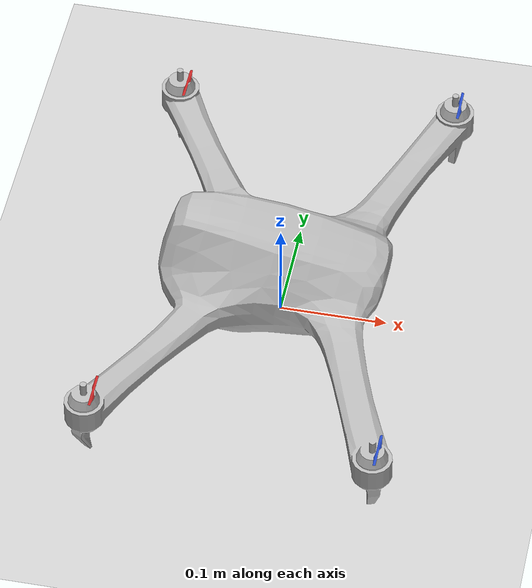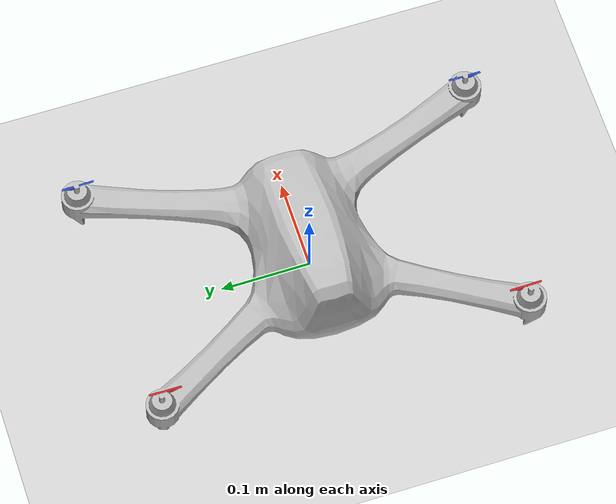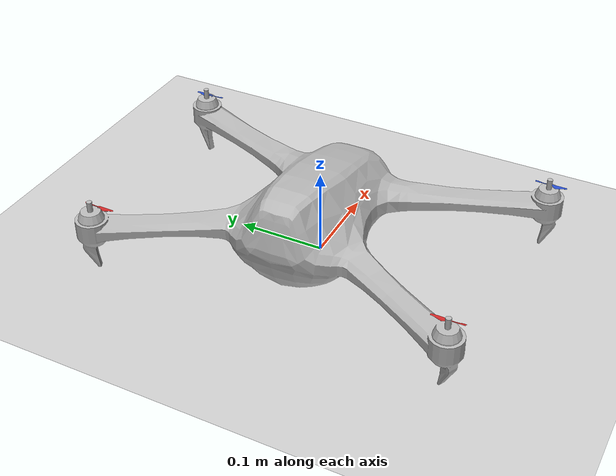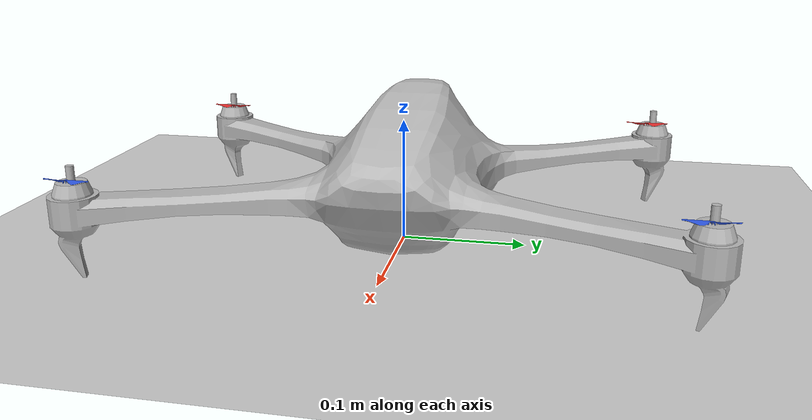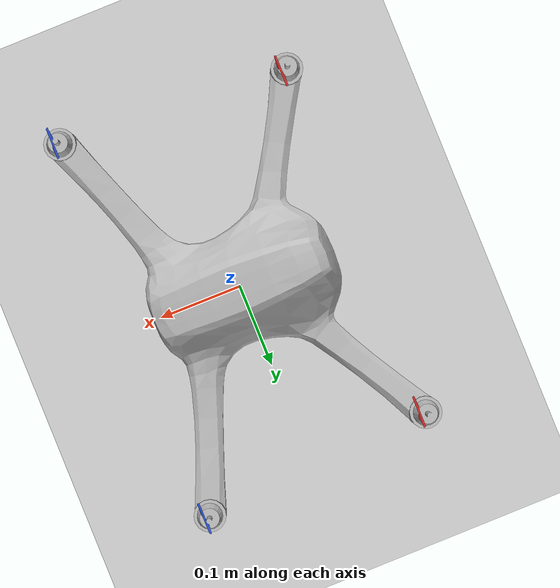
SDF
<?xml version="1.0" ?>
<sdf version="1.6">
  <world name="quadcopter">
    <physics name="4ms" type="ode">
      <max_step_size>0.004</max_step_size>
      <real_time_factor>1.0</real_time_factor>
    </physics>
    <plugin
      filename="libignition-gazebo-physics-system.so"
      name="ignition::gazebo::systems::Physics">
    </plugin>
    <plugin
      filename="libignition-gazebo-scene-broadcaster-system.so"
      name="ignition::gazebo::systems::SceneBroadcaster">
    </plugin>
    <plugin
      filename="libignition-gazebo-user-commands-system.so"
      name="ignition::gazebo::systems::UserCommands">
    </plugin>
    <plugin
      filename="libignition-gazebo-sensors-system.so"
      name="ignition::gazebo::systems::Sensors">
      <render_engine>ogre2</render_engine>
    </plugin>
    <plugin filename="libignition-gazebo-imu-system.so"
            name="ignition::gazebo::systems::Imu">
    </plugin>
    <gui fullscreen="0">
      <!-- 3D scene -->
      <plugin filename="GzScene3D" name="3D View">
        <ignition-gui>
          <title>3D View</title>
          <property type="bool" key="showTitleBar">false</property>
          <property type="string" key="state">docked</property>
        </ignition-gui>

        <engine>ogre2</engine>
        <scene>scene</scene>
        <ambient_light>0.4 0.4 0.4</ambient_light>
        <background_color>0.8 0.8 0.8</background_color>
        <camera_pose>-6 0 6 0 0.5 0</camera_pose>
      </plugin>

      <!-- World control -->
      <plugin filename="WorldControl" name="World control">
        <ignition-gui>
          <title>World control</title>
          <property type="bool" key="showTitleBar">false</property>
          <property type="bool" key="resizable">false</property>
          <property type="double" key="height">72</property>
          <property type="double" key="width">121</property>
          <property type="double" key="z">1</property>

          <property type="string" key="state">floating</property>
          <anchors target="3D View">
            <line own="left" target="left"/>
            <line own="bottom" target="bottom"/>
          </anchors>
        </ignition-gui>

        <play_pause>true</play_pause>
        <step>true</step>
        <start_paused>true</start_paused>
        <service>/world/quadcopter/control</service>
        <stats_topic>/world/quadcopter/stats</stats_topic>

      </plugin>

      <!-- World statistics -->
      <plugin filename="WorldStats" name="World stats">
        <ignition-gui>
          <title>World stats</title>
          <property type="bool" key="showTitleBar">false</property>
          <property type="bool" key="resizable">false</property>
          <property type="double" key="height">110</property>
          <property type="double" key="width">290</property>
          <property type="double" key="z">1</property>

          <property type="string" key="state">floating</property>
          <anchors target="3D View">
            <line own="right" target="right"/>
            <line own="bottom" target="bottom"/>
          </anchors>
        </ignition-gui>

        <sim_time>true</sim_time>
        <real_time>true</real_time>
        <real_time_factor>true</real_time_factor>
        <iterations>true</iterations>
        <topic>/world/quadcopter/stats</topic>

      </plugin>

    </gui>

    <light type="directional" name="sun">
      <cast_shadows>true</cast_shadows>
      <pose>0 0 10 0 0 0</pose>
      <diffuse>0.8 0.8 0.8 1</diffuse>
      <specular>0.2 0.2 0.2 1</specular>
      <attenuation>
        <range>1000</range>
        <constant>0.9</constant>
        <linear>0.01</linear>
        <quadratic>0.001</quadratic>
      </attenuation>
      <direction>-0.5 0.1 -0.9</direction>
    </light>

    <model name="ground_plane">
      <static>true</static>
      <link name="link">
        <collision name="collision">
          <geometry>
            <plane>
              <normal>0 0 1</normal>
            </plane>
          </geometry>
        </collision>
        <visual name="visual">
          <geometry>
            <plane>
              <normal>0 0 1</normal>
              <size>100 100</size>
            </plane>
          </geometry>
          <material>
            <ambient>0.8 0.8 0.8 1</ambient>
            <diffuse>0.8 0.8 0.8 1</diffuse>
            <specular>0.8 0.8 0.8 1</specular>
          </material>
        </visual>
      </link>
    </model>
  <include>
    <uri>model://x3</uri>
    <plugin
        filename="ignition-gazebo-multicopter-motor-model-system"
        name="ignition::gazebo::systems::MulticopterMotorModel">
        <robotNamespace>X3</robotNamespace>
        <jointName>X3/rotor_0_joint</jointName>
        <linkName>X3/rotor_0</linkName>
        <turningDirection>ccw</turningDirection>
        <timeConstantUp>0.0125</timeConstantUp>
        <timeConstantDown>0.025</timeConstantDown>
        <maxRotVelocity>800.0</maxRotVelocity>
        <motorConstant>8.54858e-06</motorConstant>
        <momentConstant>0.016</momentConstant>
        <commandSubTopic>gazebo/command/motor_speed</commandSubTopic>
        <motorNumber>0</motorNumber>
        <rotorDragCoefficient>8.06428e-05</rotorDragCoefficient>
        <rollingMomentCoefficient>1e-06</rollingMomentCoefficient>
        <motorSpeedPubTopic>motor_speed/0</motorSpeedPubTopic>
        <rotorVelocitySlowdownSim>10</rotorVelocitySlowdownSim>
        <motorType>velocity</motorType>
      </plugin>
      <plugin
        filename="ignition-gazebo-multicopter-motor-model-system"
        name="ignition::gazebo::systems::MulticopterMotorModel">
        <robotNamespace>X3</robotNamespace>
        <jointName>X3/rotor_1_joint</jointName>
        <linkName>X3/rotor_1</linkName>
        <turningDirection>ccw</turningDirection>
        <timeConstantUp>0.0125</timeConstantUp>
        <timeConstantDown>0.025</timeConstantDown>
        <maxRotVelocity>800.0</maxRotVelocity>
        <motorConstant>8.54858e-06</motorConstant>
        <momentConstant>0.016</momentConstant>
        <commandSubTopic>gazebo/command/motor_speed</commandSubTopic>
        <motorNumber>1</motorNumber>
        <rotorDragCoefficient>8.06428e-05</rotorDragCoefficient>
        <rollingMomentCoefficient>1e-06</rollingMomentCoefficient>
        <motorSpeedPubTopic>motor_speed/1</motorSpeedPubTopic>
        <rotorVelocitySlowdownSim>10</rotorVelocitySlowdownSim>
        <motorType>velocity</motorType>
      </plugin>
      <plugin
        filename="ignition-gazebo-multicopter-motor-model-system"
        name="ignition::gazebo::systems::MulticopterMotorModel">
        <robotNamespace>X3</robotNamespace>
        <jointName>X3/rotor_2_joint</jointName>
        <linkName>X3/rotor_2</linkName>
        <turningDirection>cw</turningDirection>
        <timeConstantUp>0.0125</timeConstantUp>
        <timeConstantDown>0.025</timeConstantDown>
        <maxRotVelocity>800.0</maxRotVelocity>
        <motorConstant>8.54858e-06</motorConstant>
        <momentConstant>0.016</momentConstant>
        <commandSubTopic>gazebo/command/motor_speed</commandSubTopic>
        <motorNumber>2</motorNumber>
        <rotorDragCoefficient>8.06428e-05</rotorDragCoefficient>
        <rollingMomentCoefficient>1e-06</rollingMomentCoefficient>
        <motorSpeedPubTopic>motor_speed/2</motorSpeedPubTopic>
        <rotorVelocitySlowdownSim>10</rotorVelocitySlowdownSim>
        <motorType>velocity</motorType>
      </plugin>
      <plugin
        filename="ignition-gazebo-multicopter-motor-model-system"
        name="ignition::gazebo::systems::MulticopterMotorModel">
        <robotNamespace>X3</robotNamespace>
        <jointName>X3/rotor_3_joint</jointName>
        <linkName>X3/rotor_3</linkName>
        <turningDirection>cw</turningDirection>
        <timeConstantUp>0.0125</timeConstantUp>
        <timeConstantDown>0.025</timeConstantDown>
        <maxRotVelocity>800.0</maxRotVelocity>
        <motorConstant>8.54858e-06</motorConstant>
        <momentConstant>0.016</momentConstant>
        <commandSubTopic>gazebo/command/motor_speed</commandSubTopic>
        <motorNumber>3</motorNumber>
        <rotorDragCoefficient>8.06428e-05</rotorDragCoefficient>
        <rollingMomentCoefficient>1e-06</rollingMomentCoefficient>
        <motorSpeedPubTopic>motor_speed/3</motorSpeedPubTopic>
        <rotorVelocitySlowdownSim>10</rotorVelocitySlowdownSim>
        <motorType>velocity</motorType>
      </plugin>
      <plugin
          filename="libmavlink_sitl_ign_gazebo.so"
          name="mavlink_interface::GazeboMavlinkInterface">
                <robotNamespace/>
        <imuSubTopic>/imu</imuSubTopic>
        <magSubTopic>/mag</magSubTopic>
        <baroSubTopic>/baro</baroSubTopic>
        <mavlink_addr>INADDR_ANY</mavlink_addr>
        <mavlink_udp_port>14560</mavlink_udp_port>
        <mavlink_tcp_port>4560</mavlink_tcp_port>
        <serialEnabled>0</serialEnabled>
        <serialDevice>/dev/ttyACM0</serialDevice>
        <baudRate>921600</baudRate>
        <qgc_addr>INADDR_ANY</qgc_addr>
        <qgc_udp_port>14550</qgc_udp_port>
        <sdk_addr>INADDR_ANY</sdk_addr>
        <sdk_udp_port>14540</sdk_udp_port>
        <hil_mode>0</hil_mode>
        <hil_state_level>0</hil_state_level>
        <vehicle_is_tailsitter>0</vehicle_is_tailsitter>
        <send_vision_estimation>0</send_vision_estimation>
        <send_odometry>1</send_odometry>
        <enable_lockstep>1</enable_lockstep>
        <use_tcp>1</use_tcp>
        <motorSpeedCommandPubTopic>/gazebo/command/motor_speed</motorSpeedCommandPubTopic>
        <control_channels>
          <channel name='rotor1'>
            <input_index>0</input_index>
            <input_offset>0</input_offset>
            <input_scaling>1000</input_scaling>
            <zero_position_disarmed>0</zero_position_disarmed>
            <zero_position_armed>100</zero_position_armed>
            <joint_control_type>velocity</joint_control_type>
          </channel>
          <channel name='rotor2'>
            <input_index>1</input_index>
            <input_offset>0</input_offset>
            <input_scaling>1000</input_scaling>
            <zero_position_disarmed>0</zero_position_disarmed>
            <zero_position_armed>100</zero_position_armed>
            <joint_control_type>velocity</joint_control_type>
          </channel>
          <channel name='rotor3'>
            <input_index>2</input_index>
            <input_offset>0</input_offset>
            <input_scaling>1000</input_scaling>
            <zero_position_disarmed>0</zero_position_disarmed>
            <zero_position_armed>100</zero_position_armed>
            <joint_control_type>velocity</joint_control_type>
          </channel>
          <channel name='rotor4'>
            <input_index>3</input_index>
            <input_offset>0</input_offset>
            <input_scaling>1000</input_scaling>
            <zero_position_disarmed>0</zero_position_disarmed>
            <zero_position_armed>100</zero_position_armed>
            <joint_control_type>velocity</joint_control_type>
          </channel>
          <channel name='rotor5'>
            <input_index>4</input_index>
            <input_offset>1</input_offset>
            <input_scaling>324.6</input_scaling>
            <zero_position_disarmed>0</zero_position_disarmed>
            <zero_position_armed>0</zero_position_armed>
            <joint_control_type>velocity</joint_control_type>
            <joint_control_pid>
              <p>0.1</p>
              <i>0</i>
              <d>0</d>
              <iMax>0.0</iMax>
              <iMin>0.0</iMin>
              <cmdMax>2</cmdMax>
              <cmdMin>-2</cmdMin>
            </joint_control_pid>
            <joint_name>zephyr_delta_wing::propeller_joint</joint_name>
          </channel>
          <channel name='rotor6'>
            <input_index>5</input_index>
            <input_offset>0</input_offset>
            <input_scaling>0.524</input_scaling>
            <zero_position_disarmed>0</zero_position_disarmed>
            <zero_position_armed>0</zero_position_armed>
            <joint_control_type>position</joint_control_type>
            <joint_name>zephyr_delta_wing::flap_left_joint</joint_name>
            <joint_control_pid>
              <p>10.0</p>
              <i>0</i>
              <d>0</d>
              <iMax>0</iMax>
              <iMin>0</iMin>
              <cmdMax>20</cmdMax>
              <cmdMin>-20</cmdMin>
            </joint_control_pid>
          </channel>
          <channel name='rotor7'>
            <input_index>6</input_index>
            <input_offset>0</input_offset>
            <input_scaling>0.524</input_scaling>
            <zero_position_disarmed>0</zero_position_disarmed>
            <zero_position_armed>0</zero_position_armed>
            <joint_control_type>position</joint_control_type>
            <joint_name>zephyr_delta_wing::flap_right_joint</joint_name>
            <joint_control_pid>
              <p>10.0</p>
              <i>0</i>
              <d>0</d>
              <iMax>0</iMax>
              <iMin>0</iMin>
              <cmdMax>20</cmdMax>
              <cmdMin>-20</cmdMin>
            </joint_control_pid>
          </channel>
          <channel name='rotor8'>
            <input_index>7</input_index>
            <input_offset>0</input_offset>
            <input_scaling>0.524</input_scaling>
            <zero_position_disarmed>0</zero_position_disarmed>
            <zero_position_armed>0</zero_position_armed>
            <joint_control_type>position</joint_control_type>
          </channel>
        </control_channels>
      </plugin>
    </include>
  </world>
</sdf>

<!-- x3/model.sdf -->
<sdf version='1.6'>
  <model name='x3'>
    <pose>0 0 0.053302 0 0 0</pose>
    <link name='X3/base_link'>
      <pose frame=''>0 0 0 0 -0 0</pose>
      <inertial>
        <pose frame=''>0 0 0 0 -0 0</pose>
        <mass>1.5</mass>
        <inertia>
          <ixx>0.0347563</ixx>
          <ixy>0</ixy>
          <ixz>0</ixz>
          <iyy>0.07</iyy>
          <iyz>0</iyz>
          <izz>0.0977</izz>
        </inertia>
      </inertial>
      <collision name='X3/base_link_inertia_collision'>
        <pose frame=''>0 0 0 0 -0 0</pose>
        <geometry>
          <box>
            <size>0.47 0.47 0.11</size>
          </box>
        </geometry>
      </collision>
      <visual name='X3/base_link_inertia_visual'>
        <pose frame=''>0 0 0 0 -0 0</pose>
        <geometry>
          <mesh>
            <scale>1 1 1</scale>
            <uri>model://x3/meshes/x3.dae</uri>
          </mesh>
        </geometry>
      </visual>
      <sensor name="imu_sensor" type="imu">
          <always_on>1</always_on>
          <update_rate>250</update_rate>
          <visualize>true</visualize>
          <topic>imu</topic>
      </sensor>
    </link>
    <link name='X3/rotor_0'>
      <pose frame=''>0.13 -0.22 0.023 0 -0 0</pose>
      <inertial>
        <pose frame=''>0 0 0 0 -0 0</pose>
        <mass>0.005</mass>
        <inertia>
          <ixx>9.75e-07</ixx>
          <ixy>0</ixy>
          <ixz>0</ixz>
          <iyy>4.17041e-05</iyy>
          <iyz>0</iyz>
          <izz>4.26041e-05</izz>
        </inertia>
      </inertial>
      <collision name='X3/rotor_0_collision'>
        <pose frame=''>0 0 0 0 -0 0</pose>
        <geometry>
          <cylinder>
            <length>0.005</length>
            <radius>0.1</radius>
          </cylinder>
        </geometry>
        <surface>
          <contact>
            <ode/>
          </contact>
          <friction>
            <ode/>
          </friction>
        </surface>
      </collision>
      <visual name='X3/rotor_0_visual'>
        <pose frame=''>0 0 0 0 -0 0</pose>
        <geometry>
          <mesh>
            <scale>0.1 0.1 0.1</scale>
            <uri>model://x3/meshes/propeller_ccw.dae</uri>
          </mesh>
        </geometry>
        <material>
          <script>
            <name>Gazebo/Blue</name>
            <uri>file://media/materials/scripts/gazebo.material</uri>
          </script>
        </material>
      </visual>
      <gravity>1</gravity>
      <velocity_decay/>
    </link>
    <joint name='X3/rotor_0_joint' type='revolute'>
      <child>X3/rotor_0</child>
      <parent>X3/base_link</parent>
      <axis>
        <xyz>0 0 1</xyz>
        <limit>
          <lower>-1e+16</lower>
          <upper>1e+16</upper>
        </limit>
        <dynamics>
          <spring_reference>0</spring_reference>
          <spring_stiffness>0</spring_stiffness>
        </dynamics>
        <use_parent_model_frame>1</use_parent_model_frame>
      </axis>
    </joint>
    <link name='X3/rotor_1'>
      <pose frame=''>-0.13 0.2 0.023 0 -0 0</pose>
      <inertial>
        <pose frame=''>0 0 0 0 -0 0</pose>
        <mass>0.005</mass>
        <inertia>
          <ixx>9.75e-07</ixx>
          <ixy>0</ixy>
          <ixz>0</ixz>
          <iyy>4.17041e-05</iyy>
          <iyz>0</iyz>
          <izz>4.26041e-05</izz>
        </inertia>
      </inertial>
      <collision name='X3/rotor_1_collision'>
        <pose frame=''>0 0 0 0 -0 0</pose>
        <geometry>
          <cylinder>
            <length>0.005</length>
            <radius>0.1</radius>
          </cylinder>
        </geometry>
        <surface>
          <contact>
            <ode/>
          </contact>
          <friction>
            <ode/>
          </friction>
        </surface>
      </collision>
      <visual name='X3/rotor_1_visual'>
        <pose frame=''>0 0 0 0 -0 0</pose>
        <geometry>
          <mesh>
            <scale>0.1 0.1 0.1</scale>
            <uri>model://x3/meshes/propeller_ccw.dae</uri>
          </mesh>
        </geometry>
        <material>
          <script>
            <name>Gazebo/Red</name>
            <uri>file://media/materials/scripts/gazebo.material</uri>
          </script>
        </material>
      </visual>
      <gravity>1</gravity>
      <velocity_decay/>
    </link>
    <joint name='X3/rotor_1_joint' type='revolute'>
      <child>X3/rotor_1</child>
      <parent>X3/base_link</parent>
      <axis>
        <xyz>0 0 1</xyz>
        <limit>
          <lower>-1e+16</lower>
          <upper>1e+16</upper>
        </limit>
        <dynamics>
          <spring_reference>0</spring_reference>
          <spring_stiffness>0</spring_stiffness>
        </dynamics>
        <use_parent_model_frame>1</use_parent_model_frame>
      </axis>
    </joint>
    <link name='X3/rotor_2'>
      <pose frame=''>0.13 0.22 0.023 0 -0 0</pose>
      <inertial>
        <pose frame=''>0 0 0 0 -0 0</pose>
        <mass>0.005</mass>
        <inertia>
          <ixx>9.75e-07</ixx>
          <ixy>0</ixy>
          <ixz>0</ixz>
          <iyy>4.17041e-05</iyy>
          <iyz>0</iyz>
          <izz>4.26041e-05</izz>
        </inertia>
      </inertial>
      <collision name='X3/rotor_2_collision'>
        <pose frame=''>0 0 0 0 -0 0</pose>
        <geometry>
          <cylinder>
            <length>0.005</length>
            <radius>0.1</radius>
          </cylinder>
        </geometry>
        <surface>
          <contact>
            <ode/>
          </contact>
          <friction>
            <ode/>
          </friction>
        </surface>
      </collision>
      <visual name='X3/rotor_2_visual'>
        <pose frame=''>0 0 0 0 -0 0</pose>
        <geometry>
          <mesh>
            <scale>0.1 0.1 0.1</scale>
            <uri>model://x3/meshes/propeller_cw.dae</uri>
          </mesh>
        </geometry>
        <material>
          <script>
            <name>Gazebo/Blue</name>
            <uri>file://media/materials/scripts/gazebo.material</uri>
          </script>
        </material>
      </visual>
      <gravity>1</gravity>
      <velocity_decay/>
    </link>
    <joint name='X3/rotor_2_joint' type='revolute'>
      <child>X3/rotor_2</child>
      <parent>X3/base_link</parent>
      <axis>
        <xyz>0 0 1</xyz>
        <limit>
          <lower>-1e+16</lower>
          <upper>1e+16</upper>
        </limit>
        <dynamics>
          <spring_reference>0</spring_reference>
          <spring_stiffness>0</spring_stiffness>
        </dynamics>
        <use_parent_model_frame>1</use_parent_model_frame>
      </axis>
    </joint>
    <link name='X3/rotor_3'>
      <pose frame=''>-0.13 -0.2 0.023 0 -0 0</pose>
      <inertial>
        <pose frame=''>0 0 0 0 -0 0</pose>
        <mass>0.005</mass>
        <inertia>
          <ixx>9.75e-07</ixx>
          <ixy>0</ixy>
          <ixz>0</ixz>
          <iyy>4.17041e-05</iyy>
          <iyz>0</iyz>
          <izz>4.26041e-05</izz>
        </inertia>
      </inertial>
      <collision name='X3/rotor_3_collision'>
        <pose frame=''>0 0 0 0 -0 0</pose>
        <geometry>
          <cylinder>
            <length>0.005</length>
            <radius>0.1</radius>
          </cylinder>
        </geometry>
        <surface>
          <contact>
            <ode/>
          </contact>
          <friction>
            <ode/>
          </friction>
        </surface>
      </collision>
      <visual name='X3/rotor_3_visual'>
        <pose frame=''>0 0 0 0 -0 0</pose>
        <geometry>
          <mesh>
            <scale>0.1 0.1 0.1</scale>
            <uri>model://x3/meshes/propeller_cw.dae</uri>
          </mesh>
        </geometry>
        <material>
          <script>
            <name>Gazebo/Red</name>
            <uri>file://media/materials/scripts/gazebo.material</uri>
          </script>
        </material>
      </visual>
      <gravity>1</gravity>
      <velocity_decay/>
    </link>
    <joint name='X3/rotor_3_joint' type='revolute'>
      <child>X3/rotor_3</child>
      <parent>X3/base_link</parent>
      <axis>
        <xyz>0 0 1</xyz>
        <limit>
          <lower>-1e+16</lower>
          <upper>1e+16</upper>
        </limit>
        <dynamics>
          <spring_reference>0</spring_reference>
          <spring_stiffness>0</spring_stiffness>
        </dynamics>
        <use_parent_model_frame>1</use_parent_model_frame>
      </axis>
    </joint>
    <plugin
      filename="libgazebo_barometer_plugin.so"
      name="barometer_plugin::BarometerPlugin">
      <link_name>X3/base_link</link_name>
    </plugin>
    <plugin
      filename="libgazebo_magnetometer_plugin.so"
      name="magnetometer_plugin::MagnetometerPlugin">
      <link_name>X3/base_link</link_name>
    </plugin>
    <plugin
      filename="libgazebo_gps_plugin.so"
      name="gps_plugin::GpsPlugin">
      <link_name>X3/base_link</link_name>
    </plugin>
  </model>
</sdf>
